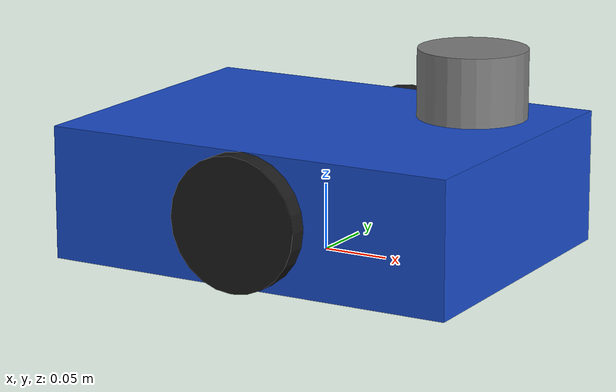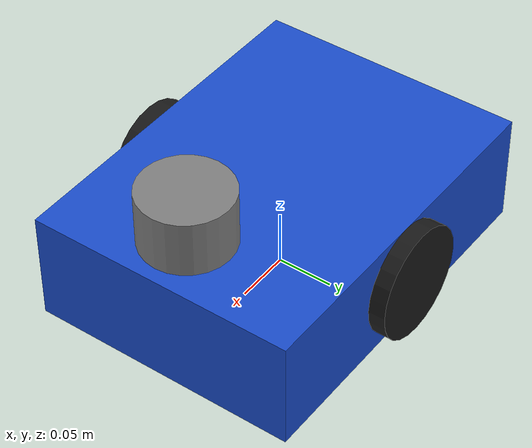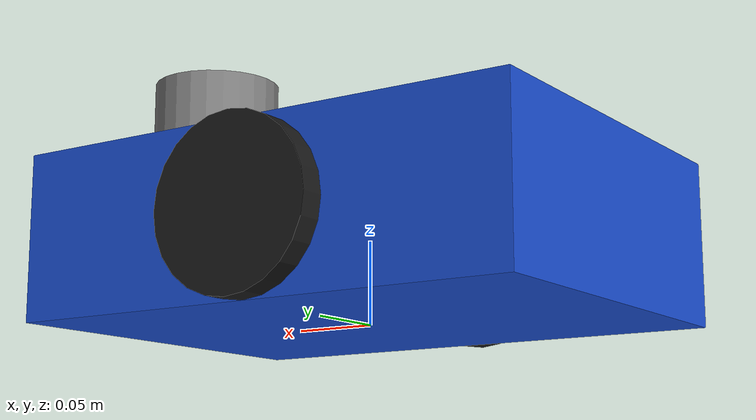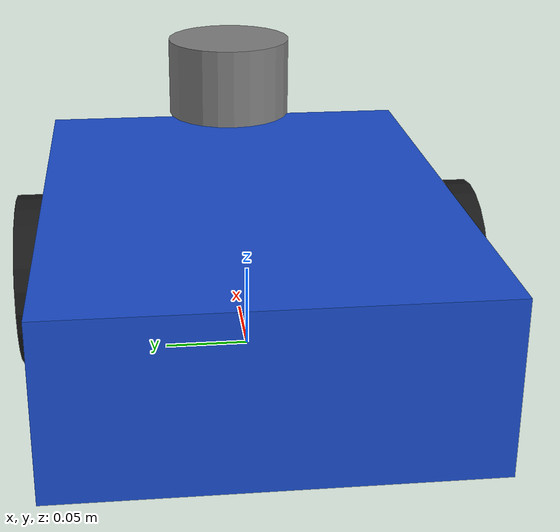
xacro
<?xml version="1.0"?>
<robot xmlns:xacro="http://www.ros.org/wiki/xacro" name="patrolbot">
  <xacro:property name="base_length" value="0.32"/>
  <xacro:property name="base_width" value="0.24"/>
  <xacro:property name="base_height" value="0.10"/>
  <xacro:property name="wheel_radius" value="0.05"/>
  <xacro:property name="wheel_thickness" value="0.03"/>
  <xacro:property name="wheel_offset_y" value="0.12"/>
  <xacro:property name="wheel_offset_x" value="0.0"/>
  <xacro:property name="wheel_offset_z" value="0.05"/>
  <xacro:property name="laser_offset_x" value="0.12"/>
  <xacro:property name="laser_offset_z" value="0.14"/>

  <!--
    base_footprint используется как плоская опорная система координат для
    навигации. Именно его обычно используют planner, costmap и AMCL.
  -->
  <link name="base_footprint"/>

  <link name="base_link">
    <visual>
      <origin xyz="0 0 ${base_height / 2.0}" rpy="0 0 0"/>
      <geometry>
        <box size="${base_length} ${base_width} ${base_height}"/>
      </geometry>
      <material name="blue">
        <color rgba="0.1 0.3 0.8 1.0"/>
      </material>
    </visual>
    <collision>
      <origin xyz="0 0 ${base_height / 2.0}" rpy="0 0 0"/>
      <geometry>
        <box size="${base_length} ${base_width} ${base_height}"/>
      </geometry>
    </collision>
    <inertial>
      <origin xyz="0 0 ${base_height / 2.0}" rpy="0 0 0"/>
      <mass value="4.5"/>
      <inertia ixx="0.06" ixy="0.0" ixz="0.0" iyy="0.08" iyz="0.0" izz="0.10"/>
    </inertial>
  </link>

  <!--
    Переход между base_footprint и base_link фиксированный. Это отделяет
    навигационный "плоский" frame от реального объёма корпуса.
  -->
  <joint name="base_footprint_to_base_link" type="fixed">
    <parent link="base_footprint"/>
    <child link="base_link"/>
    <origin xyz="0 0 0" rpy="0 0 0"/>
  </joint>

  <!--
    Левое колесо выделено в отдельное звено с continuous-joint. Это нужно для
    публикации joint_states, корректной визуализации и понятной кинематики.
  -->
  <link name="left_wheel_link">
    <visual>
      <origin xyz="0 0 0" rpy="1.57079632679 0 0"/>
      <geometry>
        <cylinder radius="${wheel_radius}" length="${wheel_thickness}"/>
      </geometry>
      <material name="black">
        <color rgba="0.1 0.1 0.1 1.0"/>
      </material>
    </visual>
    <collision>
      <origin xyz="0 0 0" rpy="1.57079632679 0 0"/>
      <geometry>
        <cylinder radius="${wheel_radius}" length="${wheel_thickness}"/>
      </geometry>
    </collision>
    <inertial>
      <mass value="0.4"/>
      <inertia ixx="0.001" ixy="0.0" ixz="0.0" iyy="0.001" iyz="0.0" izz="0.001"/>
    </inertial>
  </link>

  <!--
    Ось вращения направлена вдоль Y, потому что геометрия колеса уже повернута
    и должна соответствовать кинематике дифференциальной базы.
  -->
  <joint name="left_wheel_joint" type="continuous">
    <parent link="base_link"/>
    <child link="left_wheel_link"/>
    <origin xyz="${wheel_offset_x} ${wheel_offset_y} ${wheel_offset_z}" rpy="0 0 0"/>
    <axis xyz="0 1 0"/>
  </joint>

  <!--
    Правое колесо описано отдельно, хотя почти симметрично левому. Для маленькой
    модели это удобнее читать и править вручную, чем скрывать в макросах.
  -->
  <link name="right_wheel_link">
    <visual>
      <origin xyz="0 0 0" rpy="1.57079632679 0 0"/>
      <geometry>
        <cylinder radius="${wheel_radius}" length="${wheel_thickness}"/>
      </geometry>
      <material name="black"/>
    </visual>
    <collision>
      <origin xyz="0 0 0" rpy="1.57079632679 0 0"/>
      <geometry>
        <cylinder radius="${wheel_radius}" length="${wheel_thickness}"/>
      </geometry>
    </collision>
    <inertial>
      <mass value="0.4"/>
      <inertia ixx="0.001" ixy="0.0" ixz="0.0" iyy="0.001" iyz="0.0" izz="0.001"/>
    </inertial>
  </link>

  <!--
    Правое колесо смещено в отрицательную сторону по Y относительно центра базы.
  -->
  <joint name="right_wheel_joint" type="continuous">
    <parent link="base_link"/>
    <child link="right_wheel_link"/>
    <origin xyz="${wheel_offset_x} -${wheel_offset_y} ${wheel_offset_z}" rpy="0 0 0"/>
    <axis xyz="0 1 0"/>
  </joint>

  <!--
    laser_frame выделен в отдельное звено, чтобы внешний LiDAR-драйвер публиковал
    данные в самостоятельный понятный frame, а не прямо в base_link.
  -->
  <link name="laser_frame">
    <visual>
      <origin xyz="0 0 0" rpy="0 0 0"/>
      <geometry>
        <cylinder radius="0.04" length="0.05"/>
      </geometry>
      <material name="gray">
        <color rgba="0.5 0.5 0.5 1.0"/>
      </material>
    </visual>
    <collision>
      <origin xyz="0 0 0" rpy="0 0 0"/>
      <geometry>
        <cylinder radius="0.04" length="0.05"/>
      </geometry>
    </collision>
    <inertial>
      <mass value="0.2"/>
      <inertia ixx="0.0002" ixy="0.0" ixz="0.0" iyy="0.0002" iyz="0.0" izz="0.0002"/>
    </inertial>
  </link>

  <!--
    LiDAR вынесен немного вперёд и вверх, чтобы уменьшить экранирование корпусом
    и получить более полезный обзор для indoor-навигации и SLAM.
  -->
  <joint name="laser_joint" type="fixed">
    <parent link="base_link"/>
    <child link="laser_frame"/>
    <origin xyz="${laser_offset_x} 0 ${laser_offset_z}" rpy="0 0 0"/>
  </joint>
</robot>
